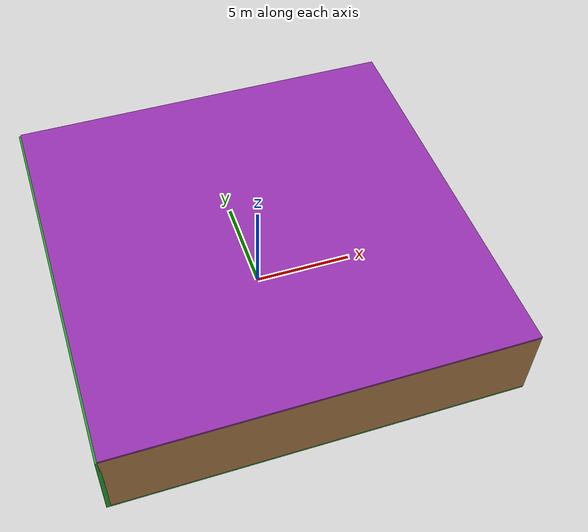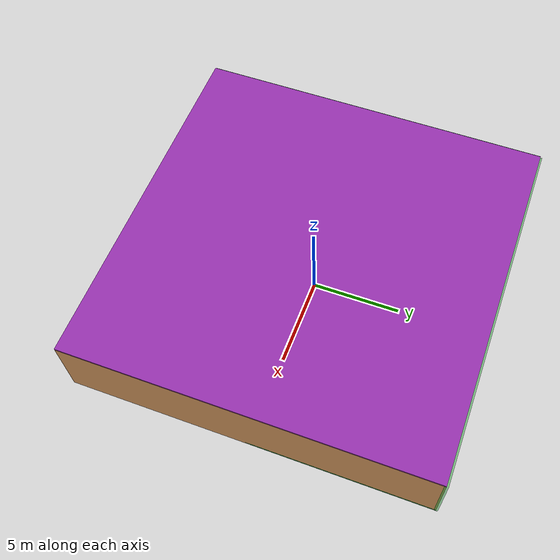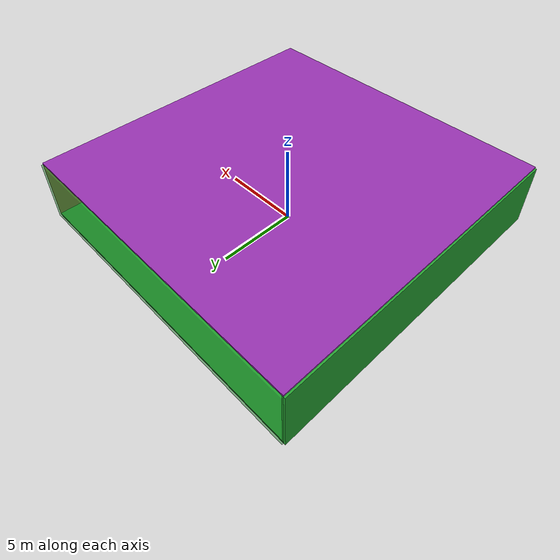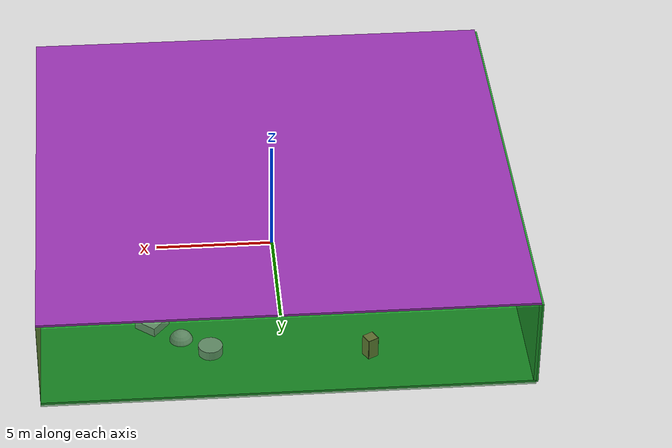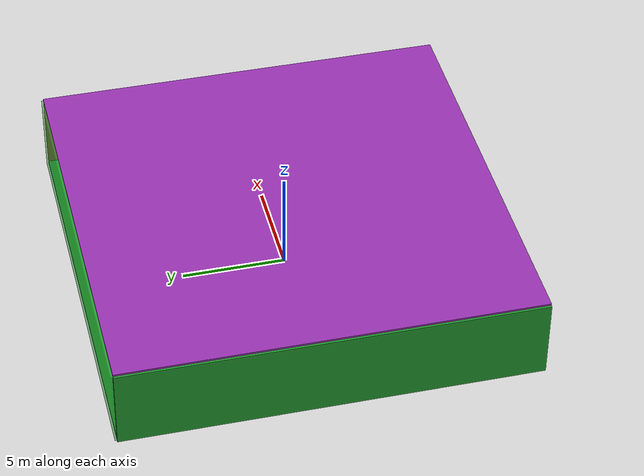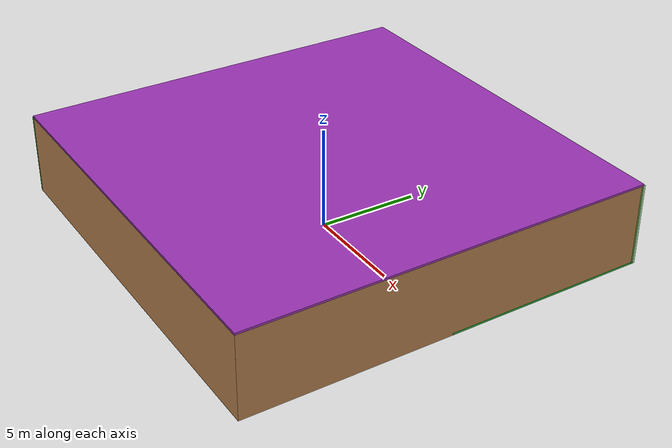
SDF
<sdf version="1.4">
 <world name="default">
  <physics type="ode">
   <max_step_size>0.001</max_step_size>
   <real_time_factor>1</real_time_factor>
   <real_time_update_rate>1000</real_time_update_rate>
   <gravity>0 0 -9.8</gravity>
  </physics>
  <scene><ambient>0.4 0.4 0.4 1</ambient><background>0.7 0.7 0.7 1</background><shadows>1</shadows></scene>
  <model name="Surrounding">
   <static>1</static>
   <link name="Ceiling">
    <collision name="Ceiling_Collision"><geometry><box><size>20 20 0.1</size></box></geometry></collision>
    <visual name="Ceiling_Visual">
     <geometry><box><size>20 20 0.1</size></box></geometry>
     <material>
      <script><uri>file://media/materials/scripts/gazebo.material</uri><name>Gazebo/Purple</name></script>
     </material>
    </visual>
    <pose>0 0 4.05 0 0 0</pose>
   </link>
   <link name="Wall_South">
    <collision name="Wall_South_Collision">
     <geometry><box><size>20 0 4</size></box></geometry>
     <pose>0 0 2 0 -0 0</pose>
    </collision>
    <visual name="Wall_South_Visual">
     <pose>0 0 2 0 -0 0</pose>
     <geometry><box><size>20 0 4</size></box></geometry>
     <material>
      <script><uri>file://media/materials/scripts/gazebo.material</uri><name>Gazebo/WoodFloor</name></script>
     </material>
    </visual>
    <velocity_decay><linear>0</linear><angular>0</angular></velocity_decay>
    <pose>0 -10 0 0 -0 0</pose>
   </link>
   <link name="Wall_East">
    <collision name="Wall_21_Collision">
     <geometry><box><size>20 0 4</size></box></geometry>
     <pose>0 0 2 0 -0 0</pose>
    </collision>
    <visual name="Wall_21_Visual">
     <pose>0 0 2 0 -0 0</pose>
     <geometry><box><size>20 0 4</size></box></geometry>
     <material>
      <script><uri>file://media/materials/scripts/gazebo.material</uri><name>Gazebo/Wood</name></script>
     </material>
    </visual>
    <velocity_decay><linear>0</linear><angular>0</angular></velocity_decay>
    <pose>10 0 0 0 -0 1.5708</pose>
   </link>
   <link name="Wall_North">
    <collision name="Wall_22_Collision">
     <geometry><box><size>20 0.2 4</size></box></geometry>
     <pose>0 0 2 0 -0 0</pose>
    </collision>
    <visual name="Wall_22_Visual">
     <pose>0 0 2 0 -0 0</pose>
     <geometry><box><size>20 0.2 4</size></box></geometry>
     <material>
      <script><uri>file://media/materials/scripts/gazebo.material</uri><name>Gazebo/GreenTransparent</name></script>
     </material>
    </visual>
    <velocity_decay><linear>0</linear><angular>0</angular></velocity_decay>
    <pose>0 10 0 0 -0 0</pose>
   </link>
   <link name="Wall_West">
    <collision name="Wall_23_Collision">
     <geometry><box><size>20 0.2 4</size></box></geometry>
     <pose>0 0 2 0 -0 0</pose>
    </collision>
    <visual name="Wall_23_Visual">
     <pose>0 0 2 0 -0 0</pose>
     <geometry><box><size>20 0.2 4</size></box></geometry>
     <material>
      <script><uri>file://media/materials/scripts/gazebo.material</uri><name>Gazebo/Green</name></script>
     </material>
    </visual>
    <velocity_decay><linear>0</linear><angular>0</angular></velocity_decay>
    <pose>-10 0 0 0 0 -1.5708</pose>
   </link>
   <link name="Ground_link">
    <collision name="collision">
     <pose>0 0 .05 0 -0 0</pose>
     <geometry><box><size>20 20 0.1</size></box></geometry>
    </collision>
    <visual name="visual">
     <pose>0 0 .05 0 -0 0</pose>
     <geometry><box><size>20 20 0.1</size></box></geometry>
     <material>
      <script><uri>file://media/materials/scripts/gazebo.material</uri><name>Gazebo/GreenGlow</name></script>
     </material>
    </visual>
   </link>
   <static>1</static>
  </model>
  <spherical_coordinates>
   <surface_model>EARTH_WGS84</surface_model>
   <latitude_deg>0</latitude_deg>
   <longitude_deg>0</longitude_deg>
   <elevation>0</elevation>
   <heading_deg>0</heading_deg>
  </spherical_coordinates>
  <light name="lightball_0" type="diffuse">
   <diffuse>0.8 0.8 0.8 1</diffuse>
   <specular>0.2 0.2 0.2 1</specular>
   <attenuation>
    <range>100</range>
    <constant>0.7</constant>
    <linear>0.01</linear>
    <quadratic>0.001</quadratic>
   </attenuation>
   <direction>-0.5 0.1 -0.9</direction>
   <pose>9.93999889441 -0.699065510014 1.55787614639 0 0 0</pose>
  </light>
  <light name="lightball_1" type="diffuse">
   <diffuse>0.8 0.8 0.8 1</diffuse>
   <specular>0.2 0.2 0.2 1</specular>
   <attenuation>
    <range>100</range>
    <constant>0.7</constant>
    <linear>0.01</linear>
    <quadratic>0.001</quadratic>
   </attenuation>
   <direction>-0.5 0.1 -0.9</direction>
   <pose>-7.59919997128 -1.27116874676 1.53473476841 0 0 0</pose>
  </light>
  <light name="lightball_2" type="diffuse">
   <diffuse>0.8 0.8 0.8 1</diffuse>
   <specular>0.2 0.2 0.2 1</specular>
   <attenuation>
    <range>100</range>
    <constant>0.7</constant>
    <linear>0.01</linear>
    <quadratic>0.001</quadratic>
   </attenuation>
   <direction>-0.5 0.1 -0.9</direction>
   <pose>-1.13546580655 -0.937767705725 2.81174721228 0 0 0</pose>
  </light>
  <light name="lightball_3" type="diffuse">
   <diffuse>0.8 0.8 0.8 1</diffuse>
   <specular>0.2 0.2 0.2 1</specular>
   <attenuation>
    <range>100</range>
    <constant>0.7</constant>
    <linear>0.01</linear>
    <quadratic>0.001</quadratic>
   </attenuation>
   <direction>-0.5 0.1 -0.9</direction>
   <pose>0.542659190123 1.87460013934 1.43529606268 0 0 0</pose>
  </light>
  <light name="lightball_4" type="diffuse">
   <diffuse>0.8 0.8 0.8 1</diffuse>
   <specular>0.2 0.2 0.2 1</specular>
   <attenuation>
    <range>100</range>
    <constant>0.7</constant>
    <linear>0.01</linear>
    <quadratic>0.001</quadratic>
   </attenuation>
   <direction>-0.5 0.1 -0.9</direction>
   <pose>5.68666799434 -3.25550536068 3.58496113429 0 0 0</pose>
  </light>
  <light name="lightball_5" type="diffuse">
   <diffuse>0.8 0.8 0.8 1</diffuse>
   <specular>0.2 0.2 0.2 1</specular>
   <attenuation>
    <range>100</range>
    <constant>0.7</constant>
    <linear>0.01</linear>
    <quadratic>0.001</quadratic>
   </attenuation>
   <direction>-0.5 0.1 -0.9</direction>
   <pose>-2.94273458326 -7.47005648022 3.38847340336 0 0 0</pose>
  </light>
  <light name="lightball_6" type="diffuse">
   <diffuse>0.8 0.8 0.8 1</diffuse>
   <specular>0.2 0.2 0.2 1</specular>
   <attenuation>
    <range>100</range>
    <constant>0.7</constant>
    <linear>0.01</linear>
    <quadratic>0.001</quadratic>
   </attenuation>
   <direction>-0.5 0.1 -0.9</direction>
   <pose>1.19549158214 8.30337437094 2.74840801618 0 0 0</pose>
  </light>
  <light name="lightball_7" type="diffuse">
   <diffuse>0.8 0.8 0.8 1</diffuse>
   <specular>0.2 0.2 0.2 1</specular>
   <attenuation>
    <range>100</range>
    <constant>0.7</constant>
    <linear>0.01</linear>
    <quadratic>0.001</quadratic>
   </attenuation>
   <direction>-0.5 0.1 -0.9</direction>
   <pose>-6.398715996 9.49123880567 3.26432915639 0 0 0</pose>
  </light>
  <light name="lightball_8" type="diffuse">
   <diffuse>0.8 0.8 0.8 1</diffuse>
   <specular>0.2 0.2 0.2 1</specular>
   <attenuation>
    <range>100</range>
    <constant>0.7</constant>
    <linear>0.01</linear>
    <quadratic>0.001</quadratic>
   </attenuation>
   <direction>-0.5 0.1 -0.9</direction>
   <pose>6.02663903551 4.16647923057 0.56528464867 0 0 0</pose>
  </light>
  <light name="lightball_9" type="diffuse">
   <diffuse>0.8 0.8 0.8 1</diffuse>
   <specular>0.2 0.2 0.2 1</specular>
   <attenuation>
    <range>100</range>
    <constant>0.7</constant>
    <linear>0.01</linear>
    <quadratic>0.001</quadratic>
   </attenuation>
   <direction>-0.5 0.1 -0.9</direction>
   <pose>1.86422281053 -9.17133366047 2.14022702324 0 0 0</pose>
  </light>
  <light name="lightball_10" type="diffuse">
   <diffuse>0.8 0.8 0.8 1</diffuse>
   <specular>0.2 0.2 0.2 1</specular>
   <attenuation>
    <range>100</range>
    <constant>0.7</constant>
    <linear>0.01</linear>
    <quadratic>0.001</quadratic>
   </attenuation>
   <direction>-0.5 0.1 -0.9</direction>
   <pose>8.77979958705 -8.03335103097 2.3678138915 0 0 0</pose>
  </light>
  <light name="lightball_11" type="diffuse">
   <diffuse>0.8 0.8 0.8 1</diffuse>
   <specular>0.2 0.2 0.2 1</specular>
   <attenuation>
    <range>100</range>
    <constant>0.7</constant>
    <linear>0.01</linear>
    <quadratic>0.001</quadratic>
   </attenuation>
   <direction>-0.5 0.1 -0.9</direction>
   <pose>-1.31152237217 -5.55972038656 0.648132908407 0 0 0</pose>
  </light>
  <light name="lightball_12" type="diffuse">
   <diffuse>0.8 0.8 0.8 1</diffuse>
   <specular>0.2 0.2 0.2 1</specular>
   <attenuation>
    <range>100</range>
    <constant>0.7</constant>
    <linear>0.01</linear>
    <quadratic>0.001</quadratic>
   </attenuation>
   <direction>-0.5 0.1 -0.9</direction>
   <pose>-8.61824194424 -7.94955930439 3.58809279832 0 0 0</pose>
  </light>
  <include><uri>model://cabinet</uri><pose>-3.46540061526 7.89007906324 0 0 0 2.06492196185</pose></include>
  <include>
   <uri>model://robocup_3Dsim_goal</uri>
   <pose>-2.40865309956 -6.64650411861 0 0 0 0.0350099121716</pose>
  </include>
  <include>
   <uri>model://robocup_3Dsim_goal</uri>
   <pose>-0.608816211404 2.00879085467 0 0 0 2.26425667406</pose>
  </include>
  <include><uri>model://cabinet</uri><pose>1.30556513096 -0.428379999325 0 0 0 2.72497767614</pose></include>
  <include>
   <uri>model://textured_shapes</uri>
   <pose>4.21787957347 6.39414270307 0 0 0 0.891602624614</pose>
  </include>
 </world>
</sdf>

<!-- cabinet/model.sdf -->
<sdf version="1.5">
  <model name="cabinet">
    <static>true</static>
    <link name="cabinet_bottom_plate">
      <inertial>
        <pose>0 0 -1 0 0 0</pose>
        <inertia>
          <ixx>2.050000</ixx>
          <ixy>0</ixy>
          <ixz>0</ixz>
          <iyy>2.050000</iyy>
          <iyz>0</iyz>
          <izz>2.050000</izz>
        </inertia>
        <mass>25.000000</mass>
      </inertial>
      <collision name="cabinet_bottom_plate_geom">
        <pose>0 0 0.010000 0 0 0</pose>
        <geometry>
          <box>
            <size>0.450000 0.450000 0.020000</size>
          </box>
        </geometry>
      </collision>
      <visual name="cabinet_bottom_plate_geom_visual">
        <pose>0 0 0.010000 0 0 0</pose>
        <geometry>
          <box>
            <size>0.450000 0.450000 0.020000</size>
          </box>
        </geometry>
        <material>
          <script>
            <uri>model://media/materials/scripts/gazebo.material</uri>
            <name>Gazebo/Wood</name>
          </script>
        </material>
      </visual>
      <collision name="cabinet_bottom_plate_geom_cabinet_back_plate">
        <pose>0.235000 0 0.510000 0 0 0</pose>
        <geometry>
          <box>
            <size>0.020000 0.450000 1.020000</size>
          </box>
        </geometry>
      </collision>
      <visual name="cabinet_bottom_plate_geom_cabinet_back_plate_visual">
        <pose>0.235000 0 0.510000 0 0 0</pose>
        <geometry>
          <box>
            <size>0.020000 0.450000 1.020000</size>
          </box>
        </geometry>
        <material>
          <script>
            <uri>model://media/materials/scripts/gazebo.material</uri>
            <name>Gazebo/Wood</name>
          </script>
        </material>
      </visual>
      <collision name="cabinet_bottom_plate_geom_cabinet_left_plate">
        <pose>0 0.235000 0.510000 0 0 0</pose>
        <geometry>
          <box>
            <size>0.450000 0.020000 1.020000</size>
          </box>
        </geometry>
      </collision>
      <visual name="cabinet_bottom_plate_geom_cabinet_left_plate_visual">
        <pose>0 0.235000 0.510000 0 0 0</pose>
        <geometry>
          <box>
            <size>0.450000 0.020000 1.020000</size>
          </box>
        </geometry>
        <material>
          <script>
            <uri>model://media/materials/scripts/gazebo.material</uri>
            <name>Gazebo/Wood</name>
          </script>
        </material>
      </visual>
      <collision name="cabinet_bottom_plate_geom_cabinet_middle_plate">
        <pose>0 0 0.510000 0 0 0</pose>
        <geometry>
          <box>
            <size>0.450000 0.450000 0.020000</size>
          </box>
        </geometry>
      </collision>
      <visual name="cabinet_bottom_plate_geom_cabinet_middle_plate_visual">
        <pose>0 0 0.510000 0 0 0</pose>
        <geometry>
          <box>
            <size>0.450000 0.450000 0.020000</size>
          </box>
        </geometry>
        <material>
          <script>
            <uri>model://media/materials/scripts/gazebo.material</uri>
            <name>Gazebo/Wood</name>
          </script>
        </material>
      </visual>
      <collision name="cabinet_bottom_plate_geom_cabinet_right_plate">
        <pose>0 -0.235000 0.510000 0 0 0</pose>
        <geometry>
          <box>
            <size>0.450000 0.020000 1.020000</size>
          </box>
        </geometry>
      </collision>
      <visual name="cabinet_bottom_plate_geom_cabinet_right_plate_visual">
        <pose>0 -0.235000 0.510000 0 0 0</pose>
        <geometry>
          <box>
            <size>0.450000 0.020000 1.020000</size>
          </box>
        </geometry>
        <material>
          <script>
            <uri>model://media/materials/scripts/gazebo.material</uri>
            <name>Gazebo/Wood</name>
          </script>
        </material>
      </visual>
      <collision name="cabinet_bottom_plate_geom_cabinet_top_plate">
        <pose>0 0 1.010000 0 0 0</pose>
        <geometry>
          <box>
            <size>0.450000 0.450000 0.020000</size>
          </box>
        </geometry>
      </collision>
      <visual name="cabinet_bottom_plate_geom_cabinet_top_plate_visual">
        <pose>0 0 1.010000 0 0 0</pose>
        <geometry>
          <box>
            <size>0.450000 0.450000 0.020000</size>
          </box>
        </geometry>
        <material>
          <script>
            <uri>model://media/materials/scripts/gazebo.material</uri>
            <name>Gazebo/Wood</name>
          </script>
        </material>
      </visual>
    </link>
  </model>
</sdf>

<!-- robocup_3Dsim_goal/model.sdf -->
<sdf version="1.5">
  <model name="robocup_3d_goal">
    <static>true</static>
    <link name="left_post">
      <pose>0 1.05 0.45 0 0 0</pose>
      <collision name="collision">
        <geometry>
          <cylinder>
            <radius>0.05</radius>
            <length>0.9</length>
          </cylinder>
        </geometry>
      </collision>
      <visual name="visual">
        <geometry>
          <cylinder>
            <radius>0.05</radius>
            <length>0.9</length>
          </cylinder>
        </geometry>
        <material>
          <script>
            <uri>file://media/materials/scripts/gazebo.material</uri>
            <name>Gazebo/ZincYellow</name>
          </script>
        </material>
      </visual>
    </link>
    <link name="left_support_horiz_lower">
      <pose>0.30 1.05 0.01 0 0 0</pose>
      <collision name="collision">
        <geometry>
          <box>
            <size>0.50 0.02 0.02</size>
          </box>
        </geometry>
      </collision>
      <visual name="visual">
        <geometry>
          <box>
            <size>0.50 0.02 0.02</size>
          </box>
        </geometry>
        <material>
          <script>
            <uri>file://media/materials/scripts/gazebo.material</uri>
            <name>Gazebo/White</name>
          </script>
        </material>
      </visual>
    </link>
    <link name="left_support_horiz_upper">
      <pose>0.30 1.05 0.79 0 0 0</pose>
      <collision name="collision">
        <geometry>
          <box>
            <size>0.50 0.02 0.02</size>
          </box>
        </geometry>
      </collision>
      <visual name="visual">
        <geometry>
          <box>
            <size>0.50 0.02 0.02</size>
          </box>
        </geometry>
        <material>
          <script>
            <uri>file://media/materials/scripts/gazebo.material</uri>
            <name>Gazebo/White</name>
          </script>
        </material>
      </visual>
    </link>
    <link name="left_support_vertical">
      <pose>0.56 1.05 0.4 0 1.5708 0</pose>
      <collision name="collision">
        <geometry>
          <box>
            <size>0.80 0.02 0.02</size>
          </box>
        </geometry>
      </collision>
      <visual name="visual">
        <geometry>
          <box>
            <size>0.80 0.02 0.02</size>
          </box>
        </geometry>
        <material>
          <script>
            <uri>file://media/materials/scripts/gazebo.material</uri>
            <name>Gazebo/White</name>
          </script>
        </material>
      </visual>
    </link>
    <link name="right_support_horiz_lower">
      <pose>0.30 -1.05 0.01 0 0 0</pose>
      <collision name="collision">
        <geometry>
          <box>
            <size>0.50 0.02 0.02</size>
          </box>
        </geometry>
      </collision>
      <visual name="visual">
        <geometry>
          <box>
            <size>0.50 0.02 0.02</size>
          </box>
        </geometry>
        <material>
          <script>
            <uri>file://media/materials/scripts/gazebo.material</uri>
            <name>Gazebo/White</name>
          </script>
        </material>
      </visual>
    </link>
    <link name="right_support_horiz_upper">
      <pose>0.30 -1.05 0.79 0 0 0</pose>
      <collision name="collision">
        <geometry>
          <box>
            <size>0.50 0.02 0.02</size>
          </box>
        </geometry>
      </collision>
      <visual name="visual">
        <geometry>
          <box>
            <size>0.50 0.02 0.02</size>
          </box>
        </geometry>
        <material>
          <script>
            <uri>file://media/materials/scripts/gazebo.material</uri>
            <name>Gazebo/White</name>
          </script>
        </material>
      </visual>
    </link>
    <link name="right_support_vertical">
      <pose>0.56 -1.05 0.4 0 1.5708 0</pose>
      <collision name="collision">
        <geometry>
          <box>
            <size>0.80 0.02 0.02</size>
          </box>
        </geometry>
      </collision>
      <visual name="visual">
        <geometry>
          <box>
            <size>0.80 0.02 0.02</size>
          </box>
        </geometry>
        <material>
          <script>
            <uri>file://media/materials/scripts/gazebo.material</uri>
            <name>Gazebo/White</name>
          </script>
        </material>
      </visual>
    </link>
    <link name="center_support_horiz_lower">
      <pose>0.56 0 0.01 0 1.5708 0</pose>
      <collision name="collision">
        <geometry>
          <box>
            <size>0.02 2.08 0.02</size>
          </box>
        </geometry>
      </collision>
      <visual name="visual">
        <geometry>
          <box>
            <size>0.02 2.08 0.02</size>
          </box>
        </geometry>
        <material>
          <script>
            <uri>file://media/materials/scripts/gazebo.material</uri>
            <name>Gazebo/White</name>
          </script>
        </material>
      </visual>
    </link>
    <link name="center_support_horiz_upper">
      <pose>0.56 0 0.79 0 1.5708 0</pose>
      <collision name="collision">
        <geometry>
          <box>
            <size>0.02 2.08 0.02</size>
          </box>
        </geometry>
      </collision>
      <visual name="visual">
        <geometry>
          <box>
            <size>0.02 2.08 0.02</size>
          </box>
        </geometry>
        <material>
          <script>
            <uri>file://media/materials/scripts/gazebo.material</uri>
            <name>Gazebo/White</name>
          </script>
        </material>
      </visual>
    </link>
    <link name="right_post">
      <pose>0 -1.05 0.45 0 0 0</pose>
      <collision name="collision">
        <geometry>
          <cylinder>
            <radius>0.05</radius>
            <length>0.9</length>
          </cylinder>
        </geometry>
      </collision>
      <visual name="visual">
        <geometry>
          <cylinder>
            <radius>0.05</radius>
            <length>0.9</length>
          </cylinder>
        </geometry>
        <material>
          <script>
            <uri>file://media/materials/scripts/gazebo.material</uri>
            <name>Gazebo/ZincYellow</name>
          </script>
        </material>
      </visual>
    </link>
    <link name="crossbar">
      <pose>0 0 0.85 1.57 1.57 0</pose>
      <collision name="collision">
        <geometry>
          <cylinder>
            <radius>0.05</radius>
            <length>2.0</length>
          </cylinder>
        </geometry>
      </collision>
      <visual name="visual">
        <geometry>
          <cylinder>
            <radius>0.05</radius>
            <length>2.0</length>
          </cylinder>
        </geometry>
        <material>
          <script>
            <uri>file://media/materials/scripts/gazebo.material</uri>
            <name>Gazebo/ZincYellow</name>
          </script>
        </material>
      </visual>
    </link>
    <link name="center_net">
      <pose>0.56 0 0.40 0 0 0</pose>
      <collision name="collision">
        <geometry>
          <box>
            <size>0.01 2.1 0.80</size>
          </box>
        </geometry>
      </collision>
      <visual name="visual">
        <geometry>
          <box>
            <size>0.01 2.1 0.80</size>
          </box>
        </geometry>
        <material>
          <script>
            <uri>model://../model_source/models/robocup09_spl_field/materials/scripts/</uri>
            <uri>model://../model_source/models/robocup09_spl_field/materials/textures/</uri>
            <name>RoboCup/Net</name>
          </script>
        </material>
      </visual>
    </link>
    <link name="left_net">
      <pose>0.30 1.05 0.40 0 0 0</pose>
      <collision name="collision">
        <geometry>
          <box>
            <size>0.50 0.01 0.76</size>
          </box>
        </geometry>
      </collision>
      <visual name="visual">
        <geometry>
          <box>
            <size>0.50 0.01 0.76</size>
          </box>
        </geometry>
        <material>
          <script>
            <uri>model://../model_source/models/robocup09_spl_field/materials/scripts/</uri>
            <uri>model://../model_source/models/robocup09_spl_field/materials/textures/</uri>
            <name>RoboCup/Net</name>
          </script>
        </material>
      </visual>
    </link>
    <link name="right_net">
      <pose>0.30 -1.05 0.40 0 0 0</pose>
      <collision name="collision">
        <geometry>
          <box>
            <size>0.50 0.01 0.76</size>
          </box>
        </geometry>
      </collision>
      <visual name="visual">
        <geometry>
          <box>
            <size>0.50 0.01 0.76</size>
          </box>
        </geometry>
        <material>
          <script>
            <uri>model://../model_source/models/robocup09_spl_field/materials/scripts/</uri>
            <uri>model://../model_source/models/robocup09_spl_field/materials/textures/</uri>
            <name>RoboCup/Net</name>
          </script>
        </material>
      </visual>
    </link>
  </model>
</sdf>

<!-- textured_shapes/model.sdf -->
<sdf version="1.6">
  <model name="textured_shapes">
    <pose>0 0 0.5 0 0 0</pose>
    <link name="box">
      <pose>0 -1.5 0 0 0 0</pose>
      <collision name="collision">
        <geometry>
          <box>
            <size>1 1 1</size>
          </box>
        </geometry>
      </collision>
      <visual name="visual">
        <geometry>
          <box>
            <size>1 1 1</size>
          </box>
        </geometry>
        <material>
          <script>
            <uri>model://../model_source/models/textured_shapes/materials/scripts</uri>
            <uri>model://../model_source/models/textured_shapes/materials/textures</uri>
            <name>TexturedShape/Squares</name>
          </script>
        </material>
      </visual>
    </link>
    <link name="sphere">
      <collision name="collision">
        <geometry>
          <sphere>
            <radius>0.5</radius>
          </sphere>
        </geometry>
      </collision>
      <visual name="visual">
        <geometry>
          <sphere>
            <radius>0.5</radius>
          </sphere>
        </geometry>
        <material>
          <script>
            <uri>model://../model_source/models/textured_shapes/materials/scripts</uri>
            <uri>model://../model_source/models/textured_shapes/materials/textures</uri>
            <name>TexturedShape/Squares</name>
          </script>
        </material>
      </visual>
    </link>
    <link name="cylinder">
      <pose>0 1.5 0 0 0 0</pose>
      <collision name="collision">
        <geometry>
          <cylinder>
            <radius>0.5</radius>
            <length>1</length>
          </cylinder>
        </geometry>
      </collision>
      <visual name="visual">
        <geometry>
          <cylinder>
            <radius>0.5</radius>
            <length>1</length>
          </cylinder>
        </geometry>
        <material>
          <script>
            <uri>model://../model_source/models/textured_shapes/materials/scripts</uri>
            <uri>model://../model_source/models/textured_shapes/materials/textures</uri>
            <name>TexturedShape/Squares</name>
          </script>
        </material>
      </visual>
    </link>
  </model>
</sdf>
